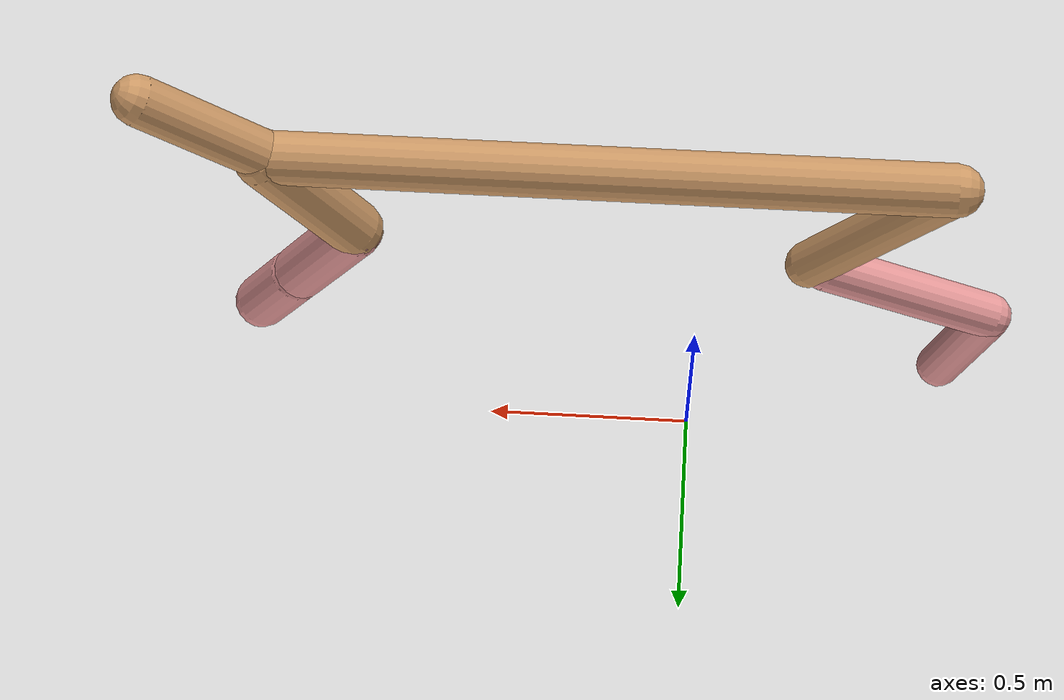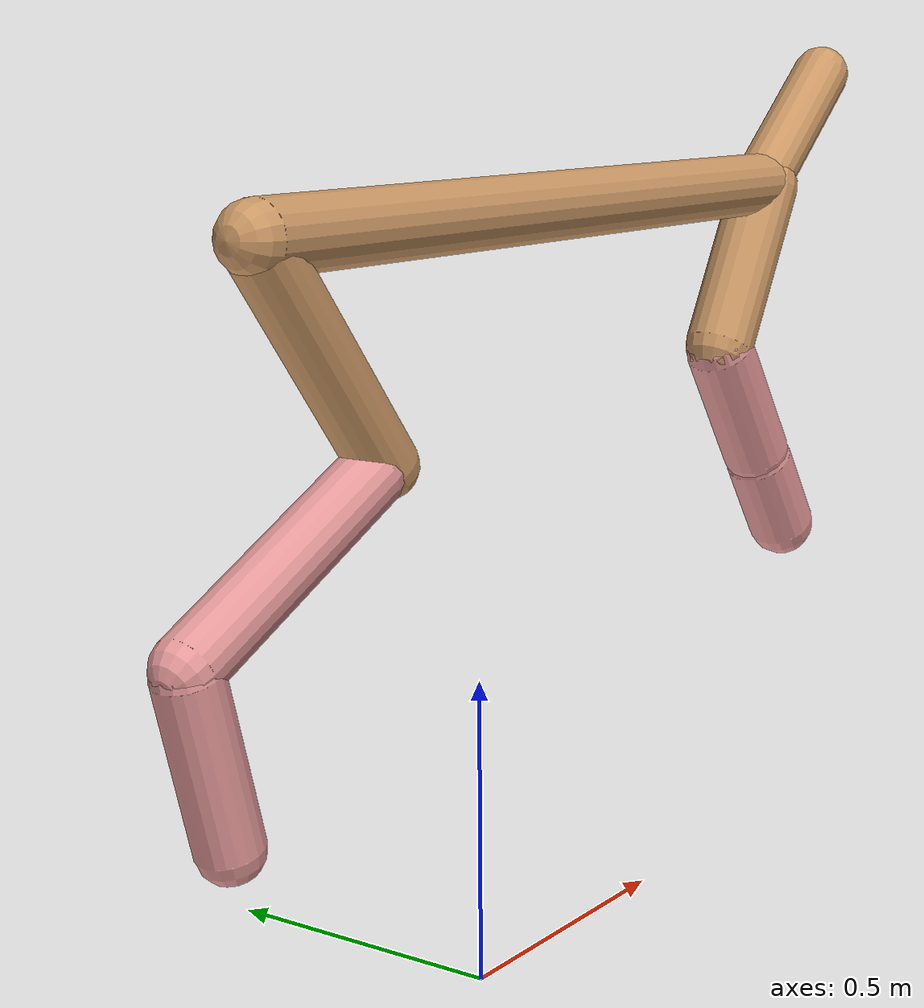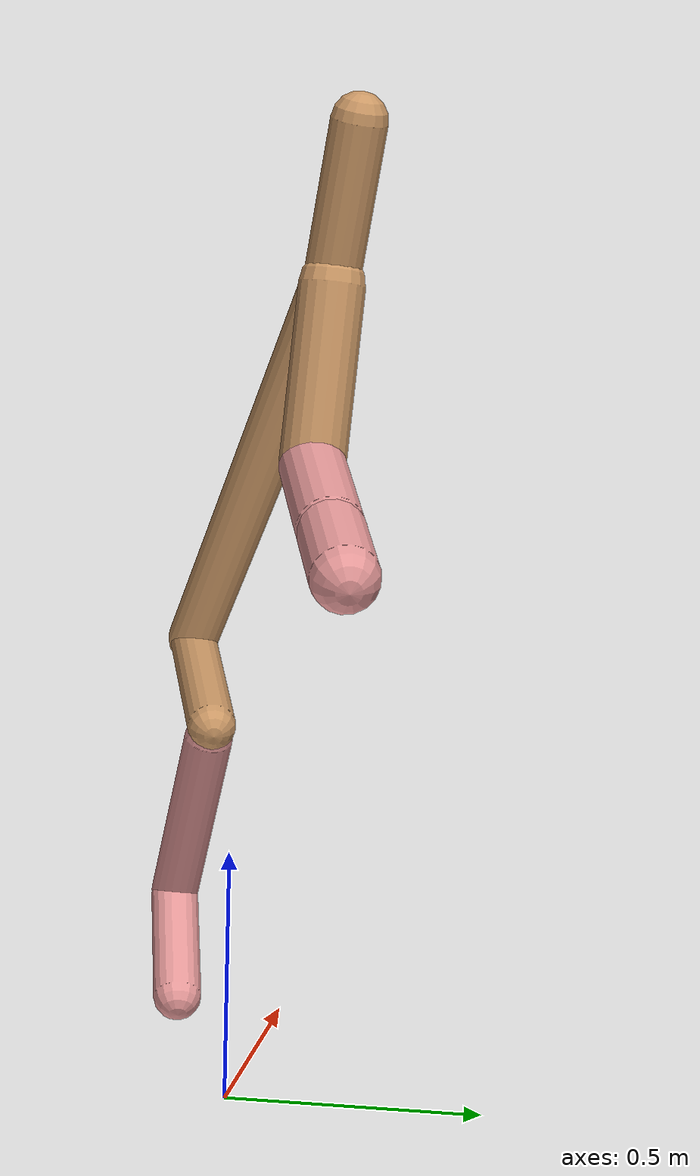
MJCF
<mujoco model="cheetah">
  <compiler angle="radian" coordinate="local" inertiafromgeom="true" settotalmass="14" />
  <default>
    <joint armature=".1" damping=".01" limited="true" solimplimit="0 .8 .03" solreflimit=".02 1" stiffness="8" />
    <geom conaffinity="0" condim="3" contype="1" friction="0.8 .1 .1" rgba="0.8 0.6 .4 1" solimp="0.0 0.8 0.01" solref="0.02 1" />
    <motor ctrllimited="true" ctrlrange="-1 1" />
  </default>
  <size nstack="300000" nuser_geom="1" />
  <option gravity="0 0 -9.81" timestep="0.01" />
  <worldbody>
    <body name="torso" pos="0.0 0.0 1.2338697528383002">
      <joint armature="0" axis="1 0 0" damping="0" limited="false" name="ignorex" pos="0 0 0" stiffness="0" type="slide" />
      <joint armature="0" axis="0 0 1" damping="0" limited="false" name="ignorez" pos="0 0 0" stiffness="0" type="slide" />
      <joint armature="0" axis="0 1 0" damping="0" limited="false" name="ignorey" pos="0 0 0" stiffness="0" type="hinge" />
      <geom fromto="-0.5 0.0 0.0 0.9185326119988139 0.0 0.0" name="torso" size="0.05603633613571133" type="capsule" />
      <geom axisangle="0 1 0 .87" name="head" pos="1.0185326119988138 0.0 0.1" size="0.05243372098688806 0.15" type="capsule" />

      <body name="bthigh" pos="-.5 0 0">
        <joint axis="0 1 0" damping="6" name="bthigh" pos="0 0 0" range="-.52 1.05" stiffness="240" type="hinge" />
        <geom axisangle="0 1 0 -3.8" name="bthigh" pos="0.139998635011579 0.0 -0.18199822551505268" size="0.05140380225261928 0.21060263911996063" type="capsule" />
        <body name="bshin" pos="0.239997270023158 0.0 -0.35399645103010535">
          <joint axis="0 1 0" damping="4.5" name="bshin" pos="0 0 0" range="-.785 .785" stiffness="180" type="hinge" />
          <geom axisangle="0 1 0 -2.03" name="bshin" pos="-0.2007001216174975 0.0 -0.10035006080874875" rgba="0.9 0.6 0.6 1" size="0.05140380225261928 0.21786479908961445" type="capsule" />
          <body name="bfoot" pos="-0.401400243234995 0.0 -0.2007001216174975">
            <joint axis="0 1 0" damping="3" name="bfoot" pos="0 0 0" range="-.4 .785" stiffness="120" type="hinge" />
            <geom axisangle="0 1 0 -.27" name="bfoot" pos="0.042565915853453304 0.0 -0.13762979459283237" rgba="0.9 0.6 0.6 1" size="0.05140380225261928 0.13652860742949172" type="capsule" />
            <inertial mass="10" />
          </body>
        </body>
      </body>
      <body name="fthigh" pos="0.9185326119988138 0.0 0.0">
        <joint axis="0 1 0" damping="4.5" name="fthigh" pos="0 0 0" range="-1.5 0.8" stiffness="180" type="hinge" />
        <geom axisangle="0 1 0 .52" name="fthigh" pos="-0.08466432284122737 0.0 -0.14513883915638975" size="0.06180516401545681 0.16210332624499435" type="capsule" />
        <body name="fshin" pos="-0.16932864568245473 0.0 -0.2902776783127795">
          <joint axis="0 1 0" damping="3" name="fshin" pos="0 0 0" range="-1.2 1.1" stiffness="120" type="hinge" />
          <geom axisangle="0 1 0 -.6" name="fshin" pos="0.0785805307954951 0.0 -0.10880381187068551" rgba="0.9 0.6 0.6 1" size="0.06180516401545681 0.12919513219525866" type="capsule" />
          <body name="ffoot" pos="0.1571610615909902 0.0 -0.21760762374137102">
            <joint axis="0 1 0" damping="1.5" name="ffoot" pos="0 0 0" range="-3.1 -0.3" stiffness="60" type="hinge" />
            <geom axisangle="0 1 0 -.6" name="ffoot" pos="0.053283076104975825 0.0 -0.08288478505218463" rgba="0.9 0.6 0.6 1" size="0.06180516401545681 0.08531754012894441" type="capsule" />
            <inertial mass="10" />
          </body>
        </body>
      </body>
    </body>
  </worldbody>
  <actuator>
    <motor gear="120" joint="bthigh" name="bthigh" />
    <motor gear="90" joint="bshin" name="bshin" />
    <motor gear="60" joint="bfoot" name="bfoot" />
    <motor gear="120" joint="fthigh" name="fthigh" />
    <motor gear="60" joint="fshin" name="fshin" />
    <motor gear="30" joint="ffoot" name="ffoot" />
  </actuator>
</mujoco>
